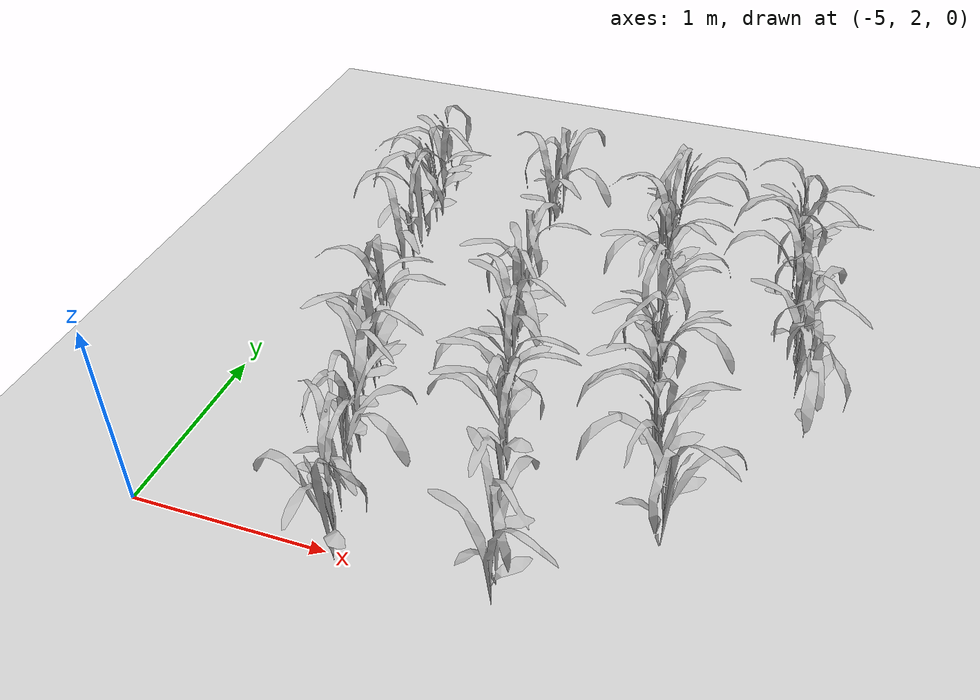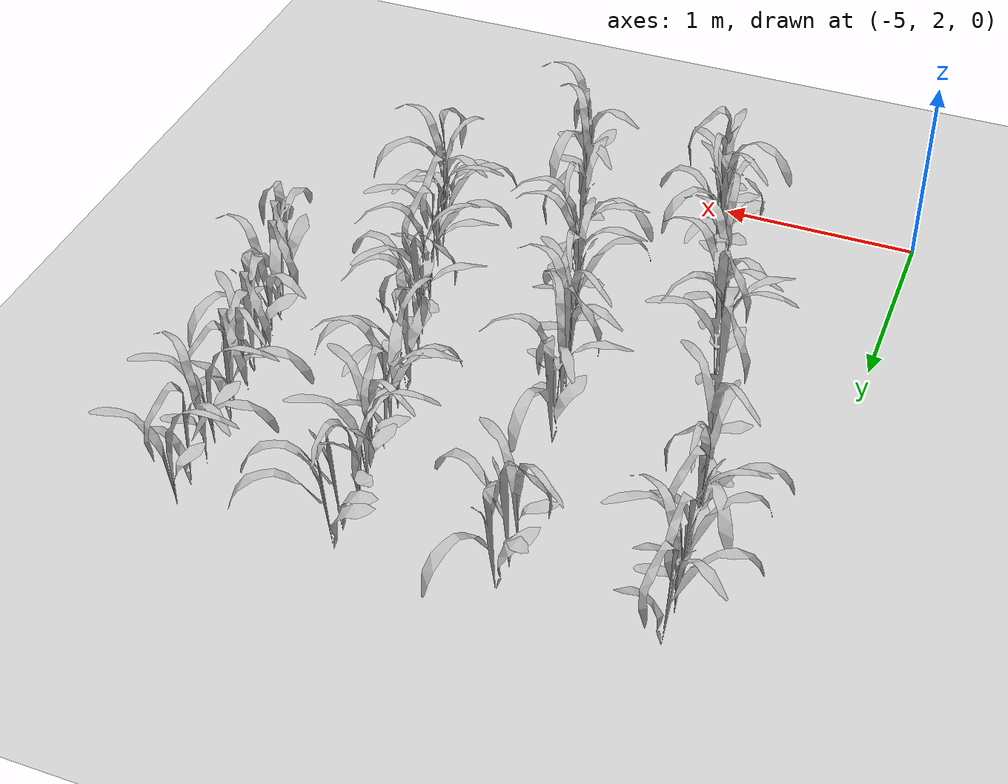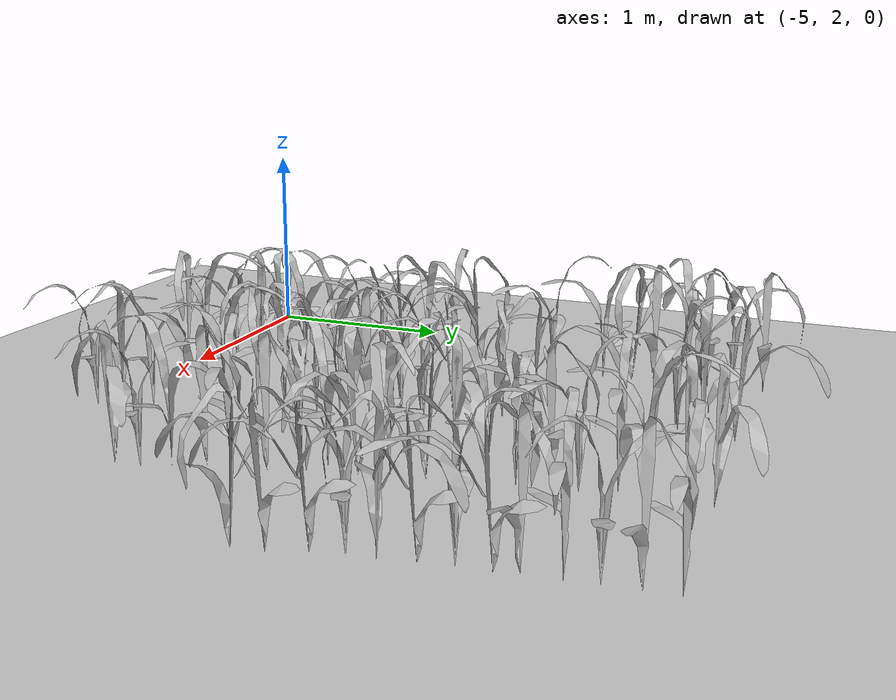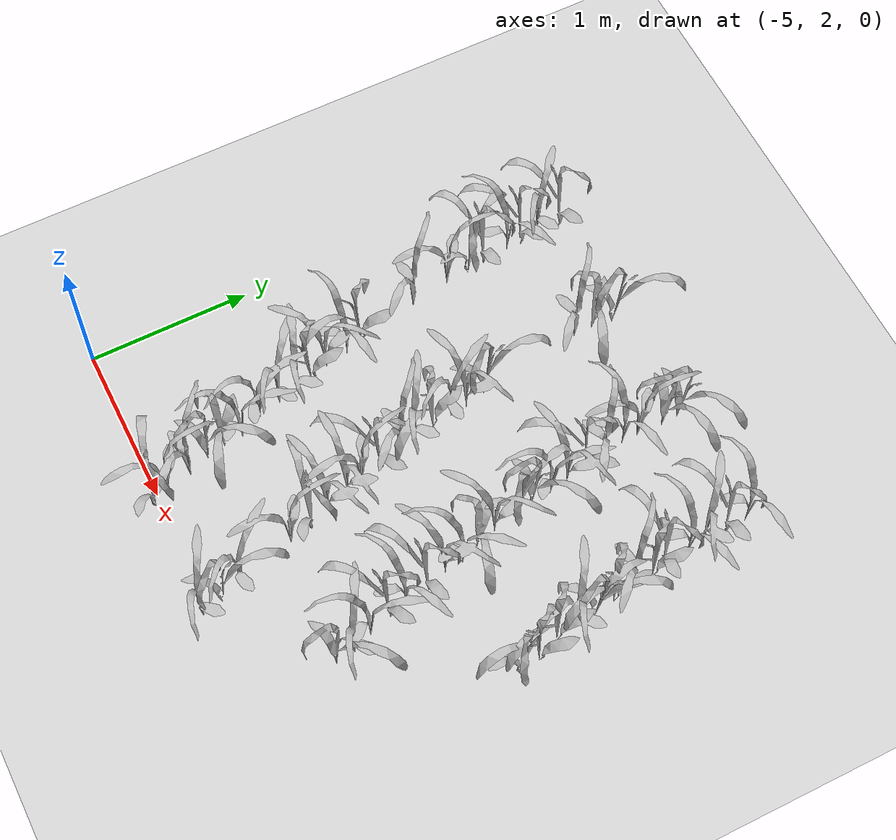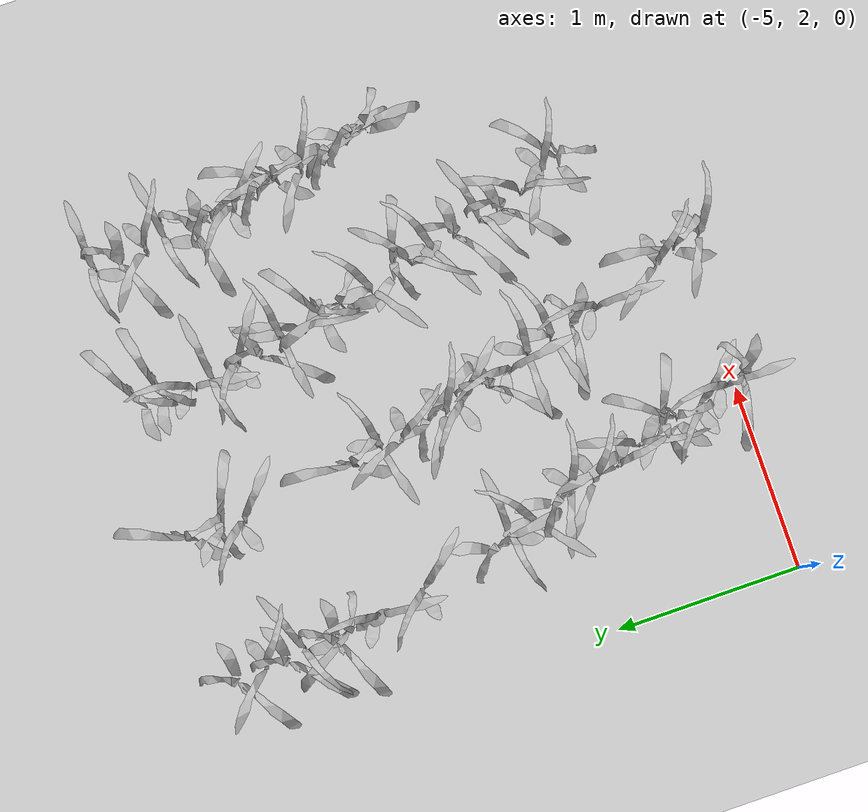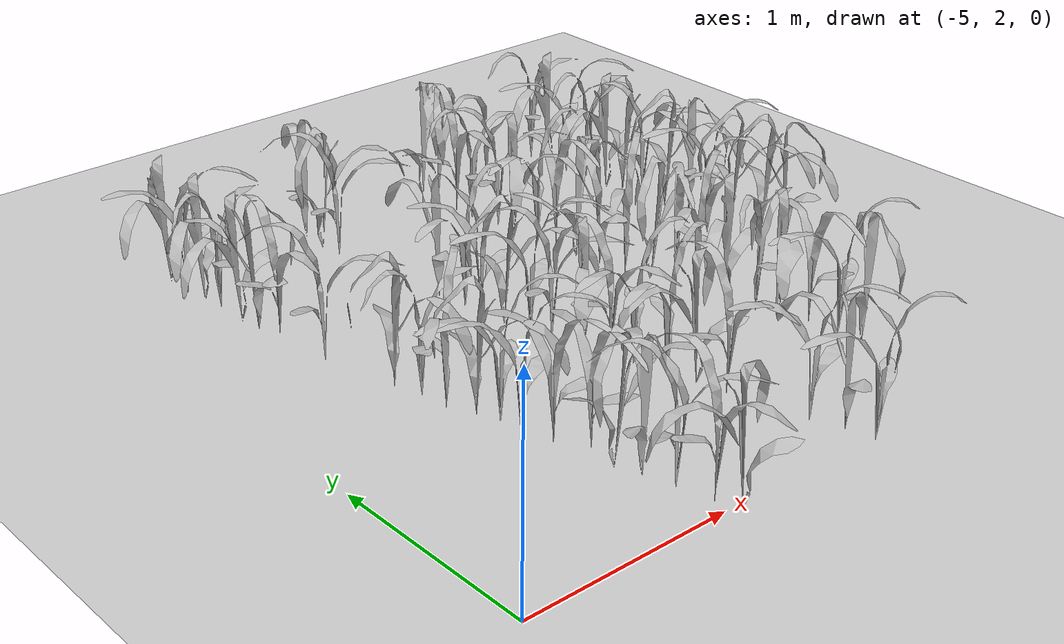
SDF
<sdf version="1.7">
 <world name="default">
  <model name="maize_01_0044">
   <pose>-3.93956 1.9696 -0 -5e-06 2.8e-05 -2.6524</pose>
   <link name="maize_01_link">
    <inertial>
     <pose>0 0 0.01 0 -0 0</pose>
     <mass>0.3</mass>
     <inertia>
      <ixx>0.00334167</ixx>
      <ixy>0</ixy>
      <ixz>0</ixz>
      <iyy>0.00334167</iyy>
      <iyz>0</iyz>
      <izz>1.66667e-05</izz>
     </inertia>
     <pose>0 0 0.1 0 -0 0</pose>
    </inertial>
    <visual name="visual">
     <geometry>
      <mesh><uri>model://maize_01/meshes/maize_01.dae</uri><scale>0.683166 0.683166 0.683166</scale></mesh>
     </geometry>
    </visual>
   </link>
   <static>0</static>
  </model>
  <model name="maize_02_0045">
   <pose>-3.9841 2.06864 -1e-06 -6e-06 -8.6e-05 0.629892</pose>
   <link name="maize_02_link">
    <inertial>
     <pose>0 0 0.01 0 -0 0</pose>
     <mass>0.3</mass>
     <inertia>
      <ixx>0.00334167</ixx>
      <ixy>0</ixy>
      <ixz>0</ixz>
      <iyy>0.00334167</iyy>
      <iyz>0</iyz>
      <izz>1.66667e-05</izz>
     </inertia>
     <pose>0 0 0.1 0 -0 0</pose>
    </inertial>
    <visual name="visual">
     <geometry>
      <mesh><uri>model://maize_02/meshes/maize_02.dae</uri><scale>0.683166 0.683166 0.683166</scale></mesh>
     </geometry>
    </visual>
   </link>
   <static>0</static>
  </model>
  <model name="maize_02_0046">
   <pose>-4.032 2.22437 1e-06 0.000156 3e-06 1.39377</pose>
   <link name="maize_02_link">
    <inertial>
     <pose>0 0 0.01 0 -0 0</pose>
     <mass>0.3</mass>
     <inertia>
      <ixx>0.00334167</ixx>
      <ixy>0</ixy>
      <ixz>0</ixz>
      <iyy>0.00334167</iyy>
      <iyz>0</iyz>
      <izz>1.66667e-05</izz>
     </inertia>
     <pose>0 0 0.1 0 -0 0</pose>
    </inertial>
    <visual name="visual">
     <geometry>
      <mesh><uri>model://maize_02/meshes/maize_02.dae</uri><scale>0.683166 0.683166 0.683166</scale></mesh>
     </geometry>
    </visual>
   </link>
   <static>0</static>
  </model>
  <model name="maize_01_0047">
   <pose>-4.07566 2.35813 -1e-06 -8.6e-05 -6e-06 1.76775</pose>
   <link name="maize_01_link">
    <inertial>
     <pose>0 0 0.01 0 -0 0</pose>
     <mass>0.3</mass>
     <inertia>
      <ixx>0.00334167</ixx>
      <ixy>0</ixy>
      <ixz>0</ixz>
      <iyy>0.00334167</iyy>
      <iyz>0</iyz>
      <izz>1.66667e-05</izz>
     </inertia>
     <pose>0 0 0.1 0 -0 0</pose>
    </inertial>
    <visual name="visual">
     <geometry>
      <mesh><uri>model://maize_01/meshes/maize_01.dae</uri><scale>0.683166 0.683166 0.683166</scale></mesh>
     </geometry>
    </visual>
   </link>
   <static>0</static>
  </model>
  <model name="maize_01_0048">
   <pose>-4.11248 2.47616 -0 -5e-06 -2.8e-05 0.41705</pose>
   <link name="maize_01_link">
    <inertial>
     <pose>0 0 0.01 0 -0 0</pose>
     <mass>0.3</mass>
     <inertia>
      <ixx>0.00334167</ixx>
      <ixy>0</ixy>
      <ixz>0</ixz>
      <iyy>0.00334167</iyy>
      <iyz>0</iyz>
      <izz>1.66667e-05</izz>
     </inertia>
     <pose>0 0 0.1 0 -0 0</pose>
    </inertial>
    <visual name="visual">
     <geometry>
      <mesh><uri>model://maize_01/meshes/maize_01.dae</uri><scale>0.683166 0.683166 0.683166</scale></mesh>
     </geometry>
    </visual>
   </link>
   <static>0</static>
  </model>
  <model name="maize_02_0049">
   <pose>-4.11988 2.59848 1e-06 0.000156 -3e-06 -2.78928</pose>
   <link name="maize_02_link">
    <inertial>
     <pose>0 0 0.01 0 -0 0</pose>
     <mass>0.3</mass>
     <inertia>
      <ixx>0.00334167</ixx>
      <ixy>0</ixy>
      <ixz>0</ixz>
      <iyy>0.00334167</iyy>
      <iyz>0</iyz>
      <izz>1.66667e-05</izz>
     </inertia>
     <pose>0 0 0.1 0 -0 0</pose>
    </inertial>
    <visual name="visual">
     <geometry>
      <mesh><uri>model://maize_02/meshes/maize_02.dae</uri><scale>0.683166 0.683166 0.683166</scale></mesh>
     </geometry>
    </visual>
   </link>
   <static>0</static>
  </model>
  <model name="maize_02_0050">
   <pose>-4.18842 2.74315 -0 -5e-06 -2.8e-05 -2.40135</pose>
   <link name="maize_02_link">
    <inertial>
     <pose>0 0 0.01 0 -0 0</pose>
     <mass>0.3</mass>
     <inertia>
      <ixx>0.00334167</ixx>
      <ixy>0</ixy>
      <ixz>0</ixz>
      <iyy>0.00334167</iyy>
      <iyz>0</iyz>
      <izz>1.66667e-05</izz>
     </inertia>
     <pose>0 0 0.1 0 -0 0</pose>
    </inertial>
    <visual name="visual">
     <geometry>
      <mesh><uri>model://maize_02/meshes/maize_02.dae</uri><scale>0.683166 0.683166 0.683166</scale></mesh>
     </geometry>
    </visual>
   </link>
   <static>0</static>
  </model>
  <model name="maize_02_0051">
   <pose>-4.23114 2.88787 -1e-06 -8.3e-05 6e-06 -1.63363</pose>
   <link name="maize_02_link">
    <inertial>
     <pose>0 0 0.01 0 -0 0</pose>
     <mass>0.3</mass>
     <inertia>
      <ixx>0.00334167</ixx>
      <ixy>0</ixy>
      <ixz>0</ixz>
      <iyy>0.00334167</iyy>
      <iyz>0</iyz>
      <izz>1.66667e-05</izz>
     </inertia>
     <pose>0 0 0.1 0 -0 0</pose>
    </inertial>
    <visual name="visual">
     <geometry>
      <mesh><uri>model://maize_02/meshes/maize_02.dae</uri><scale>0.683166 0.683166 0.683166</scale></mesh>
     </geometry>
    </visual>
   </link>
   <static>0</static>
  </model>
  <model name="maize_02_0052">
   <pose>-4.23301 3.01179 -0 2.8e-05 5e-06 -1.29424</pose>
   <link name="maize_02_link">
    <inertial>
     <pose>0 0 0.01 0 -0 0</pose>
     <mass>0.3</mass>
     <inertia>
      <ixx>0.00334167</ixx>
      <ixy>0</ixy>
      <ixz>0</ixz>
      <iyy>0.00334167</iyy>
      <iyz>0</iyz>
      <izz>1.66667e-05</izz>
     </inertia>
     <pose>0 0 0.1 0 -0 0</pose>
    </inertial>
    <visual name="visual">
     <geometry>
      <mesh><uri>model://maize_02/meshes/maize_02.dae</uri><scale>0.683166 0.683166 0.683166</scale></mesh>
     </geometry>
    </visual>
   </link>
   <static>0</static>
  </model>
  <model name="maize_01_0053">
   <pose>-4.26939 3.11892 -0 -5e-06 2.8e-05 -0.46424</pose>
   <link name="maize_01_link">
    <inertial>
     <pose>0 0 0.01 0 -0 0</pose>
     <mass>0.3</mass>
     <inertia>
      <ixx>0.00334167</ixx>
      <ixy>0</ixy>
      <ixz>0</ixz>
      <iyy>0.00334167</iyy>
      <iyz>0</iyz>
      <izz>1.66667e-05</izz>
     </inertia>
     <pose>0 0 0.1 0 -0 0</pose>
    </inertial>
    <visual name="visual">
     <geometry>
      <mesh><uri>model://maize_01/meshes/maize_01.dae</uri><scale>0.683166 0.683166 0.683166</scale></mesh>
     </geometry>
    </visual>
   </link>
   <static>0</static>
  </model>
  <model name="maize_02_0054">
   <pose>-4.32742 3.24059 -0.000245 -1.4e-05 -1.2e-05 -0.260914</pose>
   <link name="maize_02_link">
    <inertial>
     <pose>0 0 0.01 0 -0 0</pose>
     <mass>0.3</mass>
     <inertia>
      <ixx>0.00334167</ixx>
      <ixy>0</ixy>
      <ixz>0</ixz>
      <iyy>0.00334167</iyy>
      <iyz>0</iyz>
      <izz>1.66667e-05</izz>
     </inertia>
     <pose>0 0 0.1 0 -0 0</pose>
    </inertial>
    <visual name="visual">
     <geometry>
      <mesh><uri>model://maize_02/meshes/maize_02.dae</uri><scale>0.683166 0.683166 0.683166</scale></mesh>
     </geometry>
    </visual>
   </link>
   <static>0</static>
  </model>
  <model name="maize_02_0055">
   <pose>-4.34067 3.38274 -0 -5e-06 -2.8e-05 2.29495</pose>
   <link name="maize_02_link">
    <inertial>
     <pose>0 0 0.01 0 -0 0</pose>
     <mass>0.3</mass>
     <inertia>
      <ixx>0.00334167</ixx>
      <ixy>0</ixy>
      <ixz>0</ixz>
      <iyy>0.00334167</iyy>
      <iyz>0</iyz>
      <izz>1.66667e-05</izz>
     </inertia>
     <pose>0 0 0.1 0 -0 0</pose>
    </inertial>
    <visual name="visual">
     <geometry>
      <mesh><uri>model://maize_02/meshes/maize_02.dae</uri><scale>0.683166 0.683166 0.683166</scale></mesh>
     </geometry>
    </visual>
   </link>
   <static>0</static>
  </model>
  <model name="maize_01_0056">
   <pose>-4.3924 3.50386 1e-06 0.000156 -3e-06 -0.615377</pose>
   <link name="maize_01_link">
    <inertial>
     <pose>0 0 0.01 0 -0 0</pose>
     <mass>0.3</mass>
     <inertia>
      <ixx>0.00334167</ixx>
      <ixy>0</ixy>
      <ixz>0</ixz>
      <iyy>0.00334167</iyy>
      <iyz>0</iyz>
      <izz>1.66667e-05</izz>
     </inertia>
     <pose>0 0 0.1 0 -0 0</pose>
    </inertial>
    <visual name="visual">
     <geometry>
      <mesh><uri>model://maize_01/meshes/maize_01.dae</uri><scale>0.683166 0.683166 0.683166</scale></mesh>
     </geometry>
    </visual>
   </link>
   <static>0</static>
  </model>
  <model name="maize_02_0057">
   <pose>-4.46833 3.89039 -0 -6e-06 -4.8e-05 1.35351</pose>
   <link name="maize_02_link">
    <inertial>
     <pose>0 0 0.01 0 -0 0</pose>
     <mass>0.3</mass>
     <inertia>
      <ixx>0.00334167</ixx>
      <ixy>0</ixy>
      <ixz>0</ixz>
      <iyy>0.00334167</iyy>
      <iyz>0</iyz>
      <izz>1.66667e-05</izz>
     </inertia>
     <pose>0 0 0.1 0 -0 0</pose>
    </inertial>
    <visual name="visual">
     <geometry>
      <mesh><uri>model://maize_02/meshes/maize_02.dae</uri><scale>0.683166 0.683166 0.683166</scale></mesh>
     </geometry>
    </visual>
   </link>
   <static>0</static>
  </model>
  <model name="maize_02_0058">
   <pose>-4.52459 4.14872 -1e-06 -7.9e-05 -6e-06 0.559828</pose>
   <link name="maize_02_link">
    <inertial>
     <pose>0 0 0.01 0 -0 0</pose>
     <mass>0.3</mass>
     <inertia>
      <ixx>0.00334167</ixx>
      <ixy>0</ixy>
      <ixz>0</ixz>
      <iyy>0.00334167</iyy>
      <iyz>0</iyz>
      <izz>1.66667e-05</izz>
     </inertia>
     <pose>0 0 0.1 0 -0 0</pose>
    </inertial>
    <visual name="visual">
     <geometry>
      <mesh><uri>model://maize_02/meshes/maize_02.dae</uri><scale>0.683166 0.683166 0.683166</scale></mesh>
     </geometry>
    </visual>
   </link>
   <static>0</static>
  </model>
  <model name="maize_01_0059">
   <pose>-4.53421 4.30195 -0 -2.8e-05 -5e-06 2.91604</pose>
   <link name="maize_01_link">
    <inertial>
     <pose>0 0 0.01 0 -0 0</pose>
     <mass>0.3</mass>
     <inertia>
      <ixx>0.00334167</ixx>
      <ixy>0</ixy>
      <ixz>0</ixz>
      <iyy>0.00334167</iyy>
      <iyz>0</iyz>
      <izz>1.66667e-05</izz>
     </inertia>
     <pose>0 0 0.1 0 -0 0</pose>
    </inertial>
    <visual name="visual">
     <geometry>
      <mesh><uri>model://maize_01/meshes/maize_01.dae</uri><scale>0.683166 0.683166 0.683166</scale></mesh>
     </geometry>
    </visual>
   </link>
   <static>0</static>
  </model>
  <model name="maize_01_0060">
   <pose>-4.55051 4.41382 -0 5e-06 -2.8e-05 -1.92431</pose>
   <link name="maize_01_link">
    <inertial>
     <pose>0 0 0.01 0 -0 0</pose>
     <mass>0.3</mass>
     <inertia>
      <ixx>0.00334167</ixx>
      <ixy>0</ixy>
      <ixz>0</ixz>
      <iyy>0.00334167</iyy>
      <iyz>0</iyz>
      <izz>1.66667e-05</izz>
     </inertia>
     <pose>0 0 0.1 0 -0 0</pose>
    </inertial>
    <visual name="visual">
     <geometry>
      <mesh><uri>model://maize_01/meshes/maize_01.dae</uri><scale>0.683166 0.683166 0.683166</scale></mesh>
     </geometry>
    </visual>
   </link>
   <static>0</static>
  </model>
  <model name="maize_02_0061">
   <pose>-4.55444 4.57599 1e-06 0.000156 3e-06 2.58788</pose>
   <link name="maize_02_link">
    <inertial>
     <pose>0 0 0.01 0 -0 0</pose>
     <mass>0.3</mass>
     <inertia>
      <ixx>0.00334167</ixx>
      <ixy>0</ixy>
      <ixz>0</ixz>
      <iyy>0.00334167</iyy>
      <iyz>0</iyz>
      <izz>1.66667e-05</izz>
     </inertia>
     <pose>0 0 0.1 0 -0 0</pose>
    </inertial>
    <visual name="visual">
     <geometry>
      <mesh><uri>model://maize_02/meshes/maize_02.dae</uri><scale>0.683166 0.683166 0.683166</scale></mesh>
     </geometry>
    </visual>
   </link>
   <static>0</static>
  </model>
  <model name="maize_01_0062">
   <pose>-4.5745 4.68495 -0 5e-06 -2.8e-05 -1.58331</pose>
   <link name="maize_01_link">
    <inertial>
     <pose>0 0 0.01 0 -0 0</pose>
     <mass>0.3</mass>
     <inertia>
      <ixx>0.00334167</ixx>
      <ixy>0</ixy>
      <ixz>0</ixz>
      <iyy>0.00334167</iyy>
      <iyz>0</iyz>
      <izz>1.66667e-05</izz>
     </inertia>
     <pose>0 0 0.1 0 -0 0</pose>
    </inertial>
    <visual name="visual">
     <geometry>
      <mesh><uri>model://maize_01/meshes/maize_01.dae</uri><scale>0.683166 0.683166 0.683166</scale></mesh>
     </geometry>
    </visual>
   </link>
   <static>0</static>
  </model>
  <model name="maize_02_0063">
   <pose>-4.58951 4.8046 -0 5e-06 -2.8e-05 -1.67682</pose>
   <link name="maize_02_link">
    <inertial>
     <pose>0 0 0.01 0 -0 0</pose>
     <mass>0.3</mass>
     <inertia>
      <ixx>0.00334167</ixx>
      <ixy>0</ixy>
      <ixz>0</ixz>
      <iyy>0.00334167</iyy>
      <iyz>0</iyz>
      <izz>1.66667e-05</izz>
     </inertia>
     <pose>0 0 0.1 0 -0 0</pose>
    </inertial>
    <visual name="visual">
     <geometry>
      <mesh><uri>model://maize_02/meshes/maize_02.dae</uri><scale>0.683166 0.683166 0.683166</scale></mesh>
     </geometry>
    </visual>
   </link>
   <static>0</static>
  </model>
  <model name="maize_01_0064">
   <pose>-4.58613 4.96197 -0 2.8e-05 5e-06 -1.7606</pose>
   <link name="maize_01_link">
    <inertial>
     <pose>0 0 0.01 0 -0 0</pose>
     <mass>0.3</mass>
     <inertia>
      <ixx>0.00334167</ixx>
      <ixy>0</ixy>
      <ixz>0</ixz>
      <iyy>0.00334167</iyy>
      <iyz>0</iyz>
      <izz>1.66667e-05</izz>
     </inertia>
     <pose>0 0 0.1 0 -0 0</pose>
    </inertial>
    <visual name="visual">
     <geometry>
      <mesh><uri>model://maize_01/meshes/maize_01.dae</uri><scale>0.683166 0.683166 0.683166</scale></mesh>
     </geometry>
    </visual>
   </link>
   <static>0</static>
  </model>
  <model name="maize_02_0103">
   <pose>-3.19366 1.94614 -0 2.8e-05 -5e-06 -1.38904</pose>
   <link name="maize_02_link">
    <inertial>
     <pose>0 0 0.01 0 -0 0</pose>
     <mass>0.3</mass>
     <inertia>
      <ixx>0.00334167</ixx>
      <ixy>0</ixy>
      <ixz>0</ixz>
      <iyy>0.00334167</iyy>
      <iyz>0</iyz>
      <izz>1.66667e-05</izz>
     </inertia>
     <pose>0 0 0.1 0 -0 0</pose>
    </inertial>
    <visual name="visual">
     <geometry>
      <mesh><uri>model://maize_02/meshes/maize_02.dae</uri><scale>0.683166 0.683166 0.683166</scale></mesh>
     </geometry>
    </visual>
   </link>
   <static>0</static>
  </model>
  <model name="maize_01_0104">
   <pose>-3.22049 2.0755 -0.000245 -1.2e-05 1.4e-05 2.25526</pose>
   <link name="maize_01_link">
    <inertial>
     <pose>0 0 0.01 0 -0 0</pose>
     <mass>0.3</mass>
     <inertia>
      <ixx>0.00334167</ixx>
      <ixy>0</ixy>
      <ixz>0</ixz>
      <iyy>0.00334167</iyy>
      <iyz>0</iyz>
      <izz>1.66667e-05</izz>
     </inertia>
     <pose>0 0 0.1 0 -0 0</pose>
    </inertial>
    <visual name="visual">
     <geometry>
      <mesh><uri>model://maize_01/meshes/maize_01.dae</uri><scale>0.683166 0.683166 0.683166</scale></mesh>
     </geometry>
    </visual>
   </link>
   <static>0</static>
  </model>
  <model name="maize_02_0105">
   <pose>-3.27385 2.21698 -0 -6e-06 4.8e-05 -1.84694</pose>
   <link name="maize_02_link">
    <inertial>
     <pose>0 0 0.01 0 -0 0</pose>
     <mass>0.3</mass>
     <inertia>
      <ixx>0.00334167</ixx>
      <ixy>0</ixy>
      <ixz>0</ixz>
      <iyy>0.00334167</iyy>
      <iyz>0</iyz>
      <izz>1.66667e-05</izz>
     </inertia>
     <pose>0 0 0.1 0 -0 0</pose>
    </inertial>
    <visual name="visual">
     <geometry>
      <mesh><uri>model://maize_02/meshes/maize_02.dae</uri><scale>0.683166 0.683166 0.683166</scale></mesh>
     </geometry>
    </visual>
   </link>
   <static>0</static>
  </model>
  <model name="maize_02_0106">
   <pose>-3.37915 2.57296 -0 -5e-06 -2.8e-05 0.613587</pose>
   <link name="maize_02_link">
    <inertial>
     <pose>0 0 0.01 0 -0 0</pose>
     <mass>0.3</mass>
     <inertia>
      <ixx>0.00334167</ixx>
      <ixy>0</ixy>
      <ixz>0</ixz>
      <iyy>0.00334167</iyy>
      <iyz>0</iyz>
      <izz>1.66667e-05</izz>
     </inertia>
     <pose>0 0 0.1 0 -0 0</pose>
    </inertial>
    <visual name="visual">
     <geometry>
      <mesh><uri>model://maize_02/meshes/maize_02.dae</uri><scale>0.683166 0.683166 0.683166</scale></mesh>
     </geometry>
    </visual>
   </link>
   <static>0</static>
  </model>
  <model name="maize_01_0107">
   <pose>-3.40671 2.71972 -0 -5e-06 -2.8e-05 -2.52351</pose>
   <link name="maize_01_link">
    <inertial>
     <pose>0 0 0.01 0 -0 0</pose>
     <mass>0.3</mass>
     <inertia>
      <ixx>0.00334167</ixx>
      <ixy>0</ixy>
      <ixz>0</ixz>
      <iyy>0.00334167</iyy>
      <iyz>0</iyz>
      <izz>1.66667e-05</izz>
     </inertia>
     <pose>0 0 0.1 0 -0 0</pose>
    </inertial>
    <visual name="visual">
     <geometry>
      <mesh><uri>model://maize_01/meshes/maize_01.dae</uri><scale>0.683166 0.683166 0.683166</scale></mesh>
     </geometry>
    </visual>
   </link>
   <static>0</static>
  </model>
  <model name="maize_02_0108">
   <pose>-3.45413 2.84813 -1e-06 -6e-06 8.9e-05 -0.724634</pose>
   <link name="maize_02_link">
    <inertial>
     <pose>0 0 0.01 0 -0 0</pose>
     <mass>0.3</mass>
     <inertia>
      <ixx>0.00334167</ixx>
      <ixy>0</ixy>
      <ixz>0</ixz>
      <iyy>0.00334167</iyy>
      <iyz>0</iyz>
      <izz>1.66667e-05</izz>
     </inertia>
     <pose>0 0 0.1 0 -0 0</pose>
    </inertial>
    <visual name="visual">
     <geometry>
      <mesh><uri>model://maize_02/meshes/maize_02.dae</uri><scale>0.683166 0.683166 0.683166</scale></mesh>
     </geometry>
    </visual>
   </link>
   <static>0</static>
  </model>
  <model name="maize_02_0109">
   <pose>-3.50124 2.9957 -0 -5e-06 2.8e-05 -0.940592</pose>
   <link name="maize_02_link">
    <inertial>
     <pose>0 0 0.01 0 -0 0</pose>
     <mass>0.3</mass>
     <inertia>
      <ixx>0.00334167</ixx>
      <ixy>0</ixy>
      <ixz>0</ixz>
      <iyy>0.00334167</iyy>
      <iyz>0</iyz>
      <izz>1.66667e-05</izz>
     </inertia>
     <pose>0 0 0.1 0 -0 0</pose>
    </inertial>
    <visual name="visual">
     <geometry>
      <mesh><uri>model://maize_02/meshes/maize_02.dae</uri><scale>0.683166 0.683166 0.683166</scale></mesh>
     </geometry>
    </visual>
   </link>
   <static>0</static>
  </model>
  <model name="maize_02_0110">
   <pose>-3.54151 3.09762 1e-06 -0.000156 3e-06 0.754845</pose>
   <link name="maize_02_link">
    <inertial>
     <pose>0 0 0.01 0 -0 0</pose>
     <mass>0.3</mass>
     <inertia>
      <ixx>0.00334167</ixx>
      <ixy>0</ixy>
      <ixz>0</ixz>
      <iyy>0.00334167</iyy>
      <iyz>0</iyz>
      <izz>1.66667e-05</izz>
     </inertia>
     <pose>0 0 0.1 0 -0 0</pose>
    </inertial>
    <visual name="visual">
     <geometry>
      <mesh><uri>model://maize_02/meshes/maize_02.dae</uri><scale>0.683166 0.683166 0.683166</scale></mesh>
     </geometry>
    </visual>
   </link>
   <static>0</static>
  </model>
  <model name="maize_01_0111">
   <pose>-3.57436 3.24035 -0 2.8e-05 -5e-06 -1.54894</pose>
   <link name="maize_01_link">
    <inertial>
     <pose>0 0 0.01 0 -0 0</pose>
     <mass>0.3</mass>
     <inertia>
      <ixx>0.00334167</ixx>
      <ixy>0</ixy>
      <ixz>0</ixz>
      <iyy>0.00334167</iyy>
      <iyz>0</iyz>
      <izz>1.66667e-05</izz>
     </inertia>
     <pose>0 0 0.1 0 -0 0</pose>
    </inertial>
    <visual name="visual">
     <geometry>
      <mesh><uri>model://maize_01/meshes/maize_01.dae</uri><scale>0.683166 0.683166 0.683166</scale></mesh>
     </geometry>
    </visual>
   </link>
   <static>0</static>
  </model>
  <model name="maize_02_0112">
   <pose>-3.6167 3.38806 -0 5e-06 2.8e-05 1.40205</pose>
   <link name="maize_02_link">
    <inertial>
     <pose>0 0 0.01 0 -0 0</pose>
     <mass>0.3</mass>
     <inertia>
      <ixx>0.00334167</ixx>
      <ixy>0</ixy>
      <ixz>0</ixz>
      <iyy>0.00334167</iyy>
      <iyz>0</iyz>
      <izz>1.66667e-05</izz>
     </inertia>
     <pose>0 0 0.1 0 -0 0</pose>
    </inertial>
    <visual name="visual">
     <geometry>
      <mesh><uri>model://maize_02/meshes/maize_02.dae</uri><scale>0.683166 0.683166 0.683166</scale></mesh>
     </geometry>
    </visual>
   </link>
   <static>0</static>
  </model>
  <model name="maize_02_0113">
   <pose>-3.6465 3.49514 -0 -6e-06 4.8e-05 -1.45268</pose>
   <link name="maize_02_link">
    <inertial>
     <pose>0 0 0.01 0 -0 0</pose>
     <mass>0.3</mass>
     <inertia>
      <ixx>0.00334167</ixx>
      <ixy>0</ixy>
      <ixz>0</ixz>
      <iyy>0.00334167</iyy>
      <iyz>0</iyz>
      <izz>1.66667e-05</izz>
     </inertia>
     <pose>0 0 0.1 0 -0 0</pose>
    </inertial>
    <visual name="visual">
     <geometry>
      <mesh><uri>model://maize_02/meshes/maize_02.dae</uri><scale>0.683166 0.683166 0.683166</scale></mesh>
     </geometry>
    </visual>
   </link>
   <static>0</static>
  </model>
  <model name="maize_01_0114">
   <pose>-3.68044 3.6315 -1e-06 -8.9e-05 -6e-06 -0.196647</pose>
   <link name="maize_01_link">
    <inertial>
     <pose>0 0 0.01 0 -0 0</pose>
     <mass>0.3</mass>
     <inertia>
      <ixx>0.00334167</ixx>
      <ixy>0</ixy>
      <ixz>0</ixz>
      <iyy>0.00334167</iyy>
      <iyz>0</iyz>
      <izz>1.66667e-05</izz>
     </inertia>
     <pose>0 0 0.1 0 -0 0</pose>
    </inertial>
    <visual name="visual">
     <geometry>
      <mesh><uri>model://maize_01/meshes/maize_01.dae</uri><scale>0.683166 0.683166 0.683166</scale></mesh>
     </geometry>
    </visual>
   </link>
   <static>0</static>
  </model>
  <model name="maize_02_0115">
   <pose>-3.70262 3.7636 -0.000245 -1.4e-05 -1.2e-05 -2.03925</pose>
   <link name="maize_02_link">
    <inertial>
     <pose>0 0 0.01 0 -0 0</pose>
     <mass>0.3</mass>
     <inertia>
      <ixx>0.00334167</ixx>
      <ixy>0</ixy>
      <ixz>0</ixz>
      <iyy>0.00334167</iyy>
      <iyz>0</iyz>
      <izz>1.66667e-05</izz>
     </inertia>
     <pose>0 0 0.1 0 -0 0</pose>
    </inertial>
    <visual name="visual">
     <geometry>
      <mesh><uri>model://maize_02/meshes/maize_02.dae</uri><scale>0.683166 0.683166 0.683166</scale></mesh>
     </geometry>
    </visual>
   </link>
   <static>0</static>
  </model>
  <model name="maize_02_0116">
   <pose>-3.71103 3.86856 1e-06 -3e-06 -0.000156 -0.698277</pose>
   <link name="maize_02_link">
    <inertial>
     <pose>0 0 0.01 0 -0 0</pose>
     <mass>0.3</mass>
     <inertia>
      <ixx>0.00334167</ixx>
      <ixy>0</ixy>
      <ixz>0</ixz>
      <iyy>0.00334167</iyy>
      <iyz>0</iyz>
      <izz>1.66667e-05</izz>
     </inertia>
     <pose>0 0 0.1 0 -0 0</pose>
    </inertial>
    <visual name="visual">
     <geometry>
      <mesh><uri>model://maize_02/meshes/maize_02.dae</uri><scale>0.683166 0.683166 0.683166</scale></mesh>
     </geometry>
    </visual>
   </link>
   <static>0</static>
  </model>
  <model name="maize_01_0117">
   <pose>-3.74616 4.00537 -0 -6e-06 -4.8e-05 2.27841</pose>
   <link name="maize_01_link">
    <inertial>
     <pose>0 0 0.01 0 -0 0</pose>
     <mass>0.3</mass>
     <inertia>
      <ixx>0.00334167</ixx>
      <ixy>0</ixy>
      <ixz>0</ixz>
      <iyy>0.00334167</iyy>
      <iyz>0</iyz>
      <izz>1.66667e-05</izz>
     </inertia>
     <pose>0 0 0.1 0 -0 0</pose>
    </inertial>
    <visual name="visual">
     <geometry>
      <mesh><uri>model://maize_01/meshes/maize_01.dae</uri><scale>0.683166 0.683166 0.683166</scale></mesh>
     </geometry>
    </visual>
   </link>
   <static>0</static>
  </model>
  <model name="maize_02_0118">
   <pose>-3.83664 4.6619 -0 -5e-06 -2.8e-05 1.45399</pose>
   <link name="maize_02_link">
    <inertial>
     <pose>0 0 0.01 0 -0 0</pose>
     <mass>0.3</mass>
     <inertia>
      <ixx>0.00334167</ixx>
      <ixy>0</ixy>
      <ixz>0</ixz>
      <iyy>0.00334167</iyy>
      <iyz>0</iyz>
      <izz>1.66667e-05</izz>
     </inertia>
     <pose>0 0 0.1 0 -0 0</pose>
    </inertial>
    <visual name="visual">
     <geometry>
      <mesh><uri>model://maize_02/meshes/maize_02.dae</uri><scale>0.683166 0.683166 0.683166</scale></mesh>
     </geometry>
    </visual>
   </link>
   <static>0</static>
  </model>
  <model name="maize_01_0119">
   <pose>-3.84534 4.78544 -0 -2.8e-05 -5e-06 0.408962</pose>
   <link name="maize_01_link">
    <inertial>
     <pose>0 0 0.01 0 -0 0</pose>
     <mass>0.3</mass>
     <inertia>
      <ixx>0.00334167</ixx>
      <ixy>0</ixy>
      <ixz>0</ixz>
      <iyy>0.00334167</iyy>
      <iyz>0</iyz>
      <izz>1.66667e-05</izz>
     </inertia>
     <pose>0 0 0.1 0 -0 0</pose>
    </inertial>
    <visual name="visual">
     <geometry>
      <mesh><uri>model://maize_01/meshes/maize_01.dae</uri><scale>0.683166 0.683166 0.683166</scale></mesh>
     </geometry>
    </visual>
   </link>
   <static>0</static>
  </model>
  <model name="maize_01_0120">
   <pose>-3.83707 4.9276 -1e-06 6e-06 -8.6e-05 1.98019</pose>
   <link name="maize_01_link">
    <inertial>
     <pose>0 0 0.01 0 -0 0</pose>
     <mass>0.3</mass>
     <inertia>
      <ixx>0.00334167</ixx>
      <ixy>0</ixy>
      <ixz>0</ixz>
      <iyy>0.00334167</iyy>
      <iyz>0</iyz>
      <izz>1.66667e-05</izz>
     </inertia>
     <pose>0 0 0.1 0 -0 0</pose>
    </inertial>
    <visual name="visual">
     <geometry>
      <mesh><uri>model://maize_01/meshes/maize_01.dae</uri><scale>0.683166 0.683166 0.683166</scale></mesh>
     </geometry>
    </visual>
   </link>
   <static>0</static>
  </model>
  <model name="maize_01_0154">
   <pose>-2.6006 2.49434 -0 5e-06 2.8e-05 1.55058</pose>
   <link name="maize_01_link">
    <inertial>
     <pose>0 0 0.01 0 -0 0</pose>
     <mass>0.3</mass>
     <inertia>
      <ixx>0.00334167</ixx>
      <ixy>0</ixy>
      <ixz>0</ixz>
      <iyy>0.00334167</iyy>
      <iyz>0</iyz>
      <izz>1.66667e-05</izz>
     </inertia>
     <pose>0 0 0.1 0 -0 0</pose>
    </inertial>
    <visual name="visual">
     <geometry>
      <mesh><uri>model://maize_01/meshes/maize_01.dae</uri><scale>0.683166 0.683166 0.683166</scale></mesh>
     </geometry>
    </visual>
   </link>
   <static>0</static>
  </model>
  <model name="maize_02_0155">
   <pose>-2.61883 2.61506 1e-06 3e-06 -0.000156 -1.43455</pose>
   <link name="maize_02_link">
    <inertial>
     <pose>0 0 0.01 0 -0 0</pose>
     <mass>0.3</mass>
     <inertia>
      <ixx>0.00334167</ixx>
      <ixy>0</ixy>
      <ixz>0</ixz>
      <iyy>0.00334167</iyy>
      <iyz>0</iyz>
      <izz>1.66667e-05</izz>
     </inertia>
     <pose>0 0 0.1 0 -0 0</pose>
    </inertial>
    <visual name="visual">
     <geometry>
      <mesh><uri>model://maize_02/meshes/maize_02.dae</uri><scale>0.683166 0.683166 0.683166</scale></mesh>
     </geometry>
    </visual>
   </link>
   <static>0</static>
  </model>
  <model name="maize_02_0156">
   <pose>-2.67107 2.73942 1e-06 -3e-06 0.000156 -2.89269</pose>
   <link name="maize_02_link">
    <inertial>
     <pose>0 0 0.01 0 -0 0</pose>
     <mass>0.3</mass>
     <inertia>
      <ixx>0.00334167</ixx>
      <ixy>0</ixy>
      <ixz>0</ixz>
      <iyy>0.00334167</iyy>
      <iyz>0</iyz>
      <izz>1.66667e-05</izz>
     </inertia>
     <pose>0 0 0.1 0 -0 0</pose>
    </inertial>
    <visual name="visual">
     <geometry>
      <mesh><uri>model://maize_02/meshes/maize_02.dae</uri><scale>0.683166 0.683166 0.683166</scale></mesh>
     </geometry>
    </visual>
   </link>
   <static>0</static>
  </model>
  <model name="maize_01_0157">
   <pose>-2.72199 2.88595 -0 -2.8e-05 5e-06 -1.60913</pose>
   <link name="maize_01_link">
    <inertial>
     <pose>0 0 0.01 0 -0 0</pose>
     <mass>0.3</mass>
     <inertia>
      <ixx>0.00334167</ixx>
      <ixy>0</ixy>
      <ixz>0</ixz>
      <iyy>0.00334167</iyy>
      <iyz>0</iyz>
      <izz>1.66667e-05</izz>
     </inertia>
     <pose>0 0 0.1 0 -0 0</pose>
    </inertial>
    <visual name="visual">
     <geometry>
      <mesh><uri>model://maize_01/meshes/maize_01.dae</uri><scale>0.683166 0.683166 0.683166</scale></mesh>
     </geometry>
    </visual>
   </link>
   <static>0</static>
  </model>
  <model name="maize_02_0158">
   <pose>-2.739 2.99052 -1e-06 -8.9e-05 6e-06 2.54449</pose>
   <link name="maize_02_link">
    <inertial>
     <pose>0 0 0.01 0 -0 0</pose>
     <mass>0.3</mass>
     <inertia>
      <ixx>0.00334167</ixx>
      <ixy>0</ixy>
      <ixz>0</ixz>
      <iyy>0.00334167</iyy>
      <iyz>0</iyz>
      <izz>1.66667e-05</izz>
     </inertia>
     <pose>0 0 0.1 0 -0 0</pose>
    </inertial>
    <visual name="visual">
     <geometry>
      <mesh><uri>model://maize_02/meshes/maize_02.dae</uri><scale>0.683166 0.683166 0.683166</scale></mesh>
     </geometry>
    </visual>
   </link>
   <static>0</static>
  </model>
  <model name="maize_01_0159">
   <pose>-2.77149 3.1503 -0 2.8e-05 5e-06 -1.81311</pose>
   <link name="maize_01_link">
    <inertial>
     <pose>0 0 0.01 0 -0 0</pose>
     <mass>0.3</mass>
     <inertia>
      <ixx>0.00334167</ixx>
      <ixy>0</ixy>
      <ixz>0</ixz>
      <iyy>0.00334167</iyy>
      <iyz>0</iyz>
      <izz>1.66667e-05</izz>
     </inertia>
     <pose>0 0 0.1 0 -0 0</pose>
    </inertial>
    <visual name="visual">
     <geometry>
      <mesh><uri>model://maize_01/meshes/maize_01.dae</uri><scale>0.683166 0.683166 0.683166</scale></mesh>
     </geometry>
    </visual>
   </link>
   <static>0</static>
  </model>
  <model name="maize_02_0160">
   <pose>-2.82173 3.28241 -0 -6e-06 4.8e-05 -0.500704</pose>
   <link name="maize_02_link">
    <inertial>
     <pose>0 0 0.01 0 -0 0</pose>
     <mass>0.3</mass>
     <inertia>
      <ixx>0.00334167</ixx>
      <ixy>0</ixy>
      <ixz>0</ixz>
      <iyy>0.00334167</iyy>
      <iyz>0</iyz>
      <izz>1.66667e-05</izz>
     </inertia>
     <pose>0 0 0.1 0 -0 0</pose>
    </inertial>
    <visual name="visual">
     <geometry>
      <mesh><uri>model://maize_02/meshes/maize_02.dae</uri><scale>0.683166 0.683166 0.683166</scale></mesh>
     </geometry>
    </visual>
   </link>
   <static>0</static>
  </model>
  <model name="maize_02_0161">
   <pose>-2.83432 3.40024 1e-06 3e-06 -0.000156 3.02237</pose>
   <link name="maize_02_link">
    <inertial>
     <pose>0 0 0.01 0 -0 0</pose>
     <mass>0.3</mass>
     <inertia>
      <ixx>0.00334167</ixx>
      <ixy>0</ixy>
      <ixz>0</ixz>
      <iyy>0.00334167</iyy>
      <iyz>0</iyz>
      <izz>1.66667e-05</izz>
     </inertia>
     <pose>0 0 0.1 0 -0 0</pose>
    </inertial>
    <visual name="visual">
     <geometry>
      <mesh><uri>model://maize_02/meshes/maize_02.dae</uri><scale>0.683166 0.683166 0.683166</scale></mesh>
     </geometry>
    </visual>
   </link>
   <static>0</static>
  </model>
  <model name="maize_01_0162">
   <pose>-2.88158 3.51346 -0.000245 -1.4e-05 1.2e-05 0.498348</pose>
   <link name="maize_01_link">
    <inertial>
     <pose>0 0 0.01 0 -0 0</pose>
     <mass>0.3</mass>
     <inertia>
      <ixx>0.00334167</ixx>
      <ixy>0</ixy>
      <ixz>0</ixz>
      <iyy>0.00334167</iyy>
      <iyz>0</iyz>
      <izz>1.66667e-05</izz>
     </inertia>
     <pose>0 0 0.1 0 -0 0</pose>
    </inertial>
    <visual name="visual">
     <geometry>
      <mesh><uri>model://maize_01/meshes/maize_01.dae</uri><scale>0.683166 0.683166 0.683166</scale></mesh>
     </geometry>
    </visual>
   </link>
   <static>0</static>
  </model>
  <model name="maize_02_0163">
   <pose>-2.92067 3.64728 -0 4.8e-05 6e-06 -0.342391</pose>
   <link name="maize_02_link">
    <inertial>
     <pose>0 0 0.01 0 -0 0</pose>
     <mass>0.3</mass>
     <inertia>
      <ixx>0.00334167</ixx>
      <ixy>0</ixy>
      <ixz>0</ixz>
      <iyy>0.00334167</iyy>
      <iyz>0</iyz>
      <izz>1.66667e-05</izz>
     </inertia>
     <pose>0 0 0.1 0 -0 0</pose>
    </inertial>
    <visual name="visual">
     <geometry>
      <mesh><uri>model://maize_02/meshes/maize_02.dae</uri><scale>0.683166 0.683166 0.683166</scale></mesh>
     </geometry>
    </visual>
   </link>
   <static>0</static>
  </model>
  <model name="maize_01_0164">
   <pose>-2.93684 3.8025 -1e-06 -6e-06 8.9e-05 2.65967</pose>
   <link name="maize_01_link">
    <inertial>
     <pose>0 0 0.01 0 -0 0</pose>
     <mass>0.3</mass>
     <inertia>
      <ixx>0.00334167</ixx>
      <ixy>0</ixy>
      <ixz>0</ixz>
      <iyy>0.00334167</iyy>
      <iyz>0</iyz>
      <izz>1.66667e-05</izz>
     </inertia>
     <pose>0 0 0.1 0 -0 0</pose>
    </inertial>
    <visual name="visual">
     <geometry>
      <mesh><uri>model://maize_01/meshes/maize_01.dae</uri><scale>0.683166 0.683166 0.683166</scale></mesh>
     </geometry>
    </visual>
   </link>
   <static>0</static>
  </model>
  <model name="maize_01_0165">
   <pose>-2.97716 3.91831 -1e-06 6e-06 8.3e-05 1.4115</pose>
   <link name="maize_01_link">
    <inertial>
     <pose>0 0 0.01 0 -0 0</pose>
     <mass>0.3</mass>
     <inertia>
      <ixx>0.00334167</ixx>
      <ixy>0</ixy>
      <ixz>0</ixz>
      <iyy>0.00334167</iyy>
      <iyz>0</iyz>
      <izz>1.66667e-05</izz>
     </inertia>
     <pose>0 0 0.1 0 -0 0</pose>
    </inertial>
    <visual name="visual">
     <geometry>
      <mesh><uri>model://maize_01/meshes/maize_01.dae</uri><scale>0.683166 0.683166 0.683166</scale></mesh>
     </geometry>
    </visual>
   </link>
   <static>0</static>
  </model>
  <model name="maize_02_0166">
   <pose>-2.99169 4.05007 -0 -5e-06 -2.8e-05 -2.77609</pose>
   <link name="maize_02_link">
    <inertial>
     <pose>0 0 0.01 0 -0 0</pose>
     <mass>0.3</mass>
     <inertia>
      <ixx>0.00334167</ixx>
      <ixy>0</ixy>
      <ixz>0</ixz>
      <iyy>0.00334167</iyy>
      <iyz>0</iyz>
      <izz>1.66667e-05</izz>
     </inertia>
     <pose>0 0 0.1 0 -0 0</pose>
    </inertial>
    <visual name="visual">
     <geometry>
      <mesh><uri>model://maize_02/meshes/maize_02.dae</uri><scale>0.683166 0.683166 0.683166</scale></mesh>
     </geometry>
    </visual>
   </link>
   <static>0</static>
  </model>
  <model name="maize_02_0167">
   <pose>-3.0101 4.16931 -0 -2.8e-05 -5e-06 -0.799917</pose>
   <link name="maize_02_link">
    <inertial>
     <pose>0 0 0.01 0 -0 0</pose>
     <mass>0.3</mass>
     <inertia>
      <ixx>0.00334167</ixx>
      <ixy>0</ixy>
      <ixz>0</ixz>
      <iyy>0.00334167</iyy>
      <iyz>0</iyz>
      <izz>1.66667e-05</izz>
     </inertia>
     <pose>0 0 0.1 0 -0 0</pose>
    </inertial>
    <visual name="visual">
     <geometry>
      <mesh><uri>model://maize_02/meshes/maize_02.dae</uri><scale>0.683166 0.683166 0.683166</scale></mesh>
     </geometry>
    </visual>
   </link>
   <static>0</static>
  </model>
  <model name="maize_01_0168">
   <pose>-3.04424 4.31259 -0 -2.8e-05 -5e-06 -1.44818</pose>
   <link name="maize_01_link">
    <inertial>
     <pose>0 0 0.01 0 -0 0</pose>
     <mass>0.3</mass>
     <inertia>
      <ixx>0.00334167</ixx>
      <ixy>0</ixy>
      <ixz>0</ixz>
      <iyy>0.00334167</iyy>
      <iyz>0</iyz>
      <izz>1.66667e-05</izz>
     </inertia>
     <pose>0 0 0.1 0 -0 0</pose>
    </inertial>
    <visual name="visual">
     <geometry>
      <mesh><uri>model://maize_01/meshes/maize_01.dae</uri><scale>0.683166 0.683166 0.683166</scale></mesh>
     </geometry>
    </visual>
   </link>
   <static>0</static>
  </model>
  <model name="maize_02_0169">
   <pose>-3.04076 4.42307 -0 2.8e-05 5e-06 1.58437</pose>
   <link name="maize_02_link">
    <inertial>
     <pose>0 0 0.01 0 -0 0</pose>
     <mass>0.3</mass>
     <inertia>
      <ixx>0.00334167</ixx>
      <ixy>0</ixy>
      <ixz>0</ixz>
      <iyy>0.00334167</iyy>
      <iyz>0</iyz>
      <izz>1.66667e-05</izz>
     </inertia>
     <pose>0 0 0.1 0 -0 0</pose>
    </inertial>
    <visual name="visual">
     <geometry>
      <mesh><uri>model://maize_02/meshes/maize_02.dae</uri><scale>0.683166 0.683166 0.683166</scale></mesh>
     </geometry>
    </visual>
   </link>
   <static>0</static>
  </model>
  <model name="maize_02_0170">
   <pose>-3.08292 4.57497 -0 -2.8e-05 -5e-06 2.33349</pose>
   <link name="maize_02_link">
    <inertial>
     <pose>0 0 0.01 0 -0 0</pose>
     <mass>0.3</mass>
     <inertia>
      <ixx>0.00334167</ixx>
      <ixy>0</ixy>
      <ixz>0</ixz>
      <iyy>0.00334167</iyy>
      <iyz>0</iyz>
      <izz>1.66667e-05</izz>
     </inertia>
     <pose>0 0 0.1 0 -0 0</pose>
    </inertial>
    <visual name="visual">
     <geometry>
      <mesh><uri>model://maize_02/meshes/maize_02.dae</uri><scale>0.683166 0.683166 0.683166</scale></mesh>
     </geometry>
    </visual>
   </link>
   <static>0</static>
  </model>
  <model name="maize_02_0171">
   <pose>-3.09469 4.6843 -0.000245 1.2e-05 1.4e-05 0.453725</pose>
   <link name="maize_02_link">
    <inertial>
     <pose>0 0 0.01 0 -0 0</pose>
     <mass>0.3</mass>
     <inertia>
      <ixx>0.00334167</ixx>
      <ixy>0</ixy>
      <ixz>0</ixz>
      <iyy>0.00334167</iyy>
      <iyz>0</iyz>
      <izz>1.66667e-05</izz>
     </inertia>
     <pose>0 0 0.1 0 -0 0</pose>
    </inertial>
    <visual name="visual">
     <geometry>
      <mesh><uri>model://maize_02/meshes/maize_02.dae</uri><scale>0.683166 0.683166 0.683166</scale></mesh>
     </geometry>
    </visual>
   </link>
   <static>0</static>
  </model>
  <model name="maize_01_0172">
   <pose>-3.08496 4.84375 -0 -5e-06 -2.8e-05 1.03741</pose>
   <link name="maize_01_link">
    <inertial>
     <pose>0 0 0.01 0 -0 0</pose>
     <mass>0.3</mass>
     <inertia>
      <ixx>0.00334167</ixx>
      <ixy>0</ixy>
      <ixz>0</ixz>
      <iyy>0.00334167</iyy>
      <iyz>0</iyz>
      <izz>1.66667e-05</izz>
     </inertia>
     <pose>0 0 0.1 0 -0 0</pose>
    </inertial>
    <visual name="visual">
     <geometry>
      <mesh><uri>model://maize_01/meshes/maize_01.dae</uri><scale>0.683166 0.683166 0.683166</scale></mesh>
     </geometry>
    </visual>
   </link>
   <static>0</static>
  </model>
  <model name="maize_01_0173">
   <pose>-3.09487 4.95408 -0 6e-06 -4.8e-05 1.31187</pose>
   <link name="maize_01_link">
    <inertial>
     <pose>0 0 0.01 0 -0 0</pose>
     <mass>0.3</mass>
     <inertia>
      <ixx>0.00334167</ixx>
      <ixy>0</ixy>
      <ixz>0</ixz>
      <iyy>0.00334167</iyy>
      <iyz>0</iyz>
      <izz>1.66667e-05</izz>
     </inertia>
     <pose>0 0 0.1 0 -0 0</pose>
    </inertial>
    <visual name="visual">
     <geometry>
      <mesh><uri>model://maize_01/meshes/maize_01.dae</uri><scale>0.683166 0.683166 0.683166</scale></mesh>
     </geometry>
    </visual>
   </link>
   <static>0</static>
  </model>
  <model name="maize_01_0236">
   <pose>-2.09427 3.38705 -1e-06 -8.6e-05 -6e-06 2.73671</pose>
   <link name="maize_01_link">
    <inertial>
     <pose>0 0 0.01 0 -0 0</pose>
     <mass>0.3</mass>
     <inertia>
      <ixx>0.00334167</ixx>
      <ixy>0</ixy>
      <ixz>0</ixz>
      <iyy>0.00334167</iyy>
      <iyz>0</iyz>
      <izz>1.66667e-05</izz>
     </inertia>
     <pose>0 0 0.1 0 -0 0</pose>
    </inertial>
    <visual name="visual">
     <geometry>
      <mesh><uri>model://maize_01/meshes/maize_01.dae</uri><scale>0.683166 0.683166 0.683166</scale></mesh>
     </geometry>
    </visual>
   </link>
   <static>0</static>
  </model>
  <model name="maize_01_0237">
   <pose>-2.11869 3.51618 -0 -4.8e-05 -6e-06 -0.716741</pose>
   <link name="maize_01_link">
    <inertial>
     <pose>0 0 0.01 0 -0 0</pose>
     <mass>0.3</mass>
     <inertia>
      <ixx>0.00334167</ixx>
      <ixy>0</ixy>
      <ixz>0</ixz>
      <iyy>0.00334167</iyy>
      <iyz>0</iyz>
      <izz>1.66667e-05</izz>
     </inertia>
     <pose>0 0 0.1 0 -0 0</pose>
    </inertial>
    <visual name="visual">
     <geometry>
      <mesh><uri>model://maize_01/meshes/maize_01.dae</uri><scale>0.683166 0.683166 0.683166</scale></mesh>
     </geometry>
    </visual>
   </link>
   <static>0</static>
  </model>
  <model name="maize_01_0238">
   <pose>-2.1821 3.66088 -0.000245 1.4e-05 -1.2e-05 -0.478808</pose>
   <link name="maize_01_link">
    <inertial>
     <pose>0 0 0.01 0 -0 0</pose>
     <mass>0.3</mass>
     <inertia>
      <ixx>0.00334167</ixx>
      <ixy>0</ixy>
      <ixz>0</ixz>
      <iyy>0.00334167</iyy>
      <iyz>0</iyz>
      <izz>1.66667e-05</izz>
     </inertia>
     <pose>0 0 0.1 0 -0 0</pose>
    </inertial>
    <visual name="visual">
     <geometry>
      <mesh><uri>model://maize_01/meshes/maize_01.dae</uri><scale>0.683166 0.683166 0.683166</scale></mesh>
     </geometry>
    </visual>
   </link>
   <static>0</static>
  </model>
  <model name="maize_02_0239">
   <pose>-2.20319 3.79837 1e-06 3e-06 0.000156 -1.46432</pose>
   <link name="maize_02_link">
    <inertial>
     <pose>0 0 0.01 0 -0 0</pose>
     <mass>0.3</mass>
     <inertia>
      <ixx>0.00334167</ixx>
      <ixy>0</ixy>
      <ixz>0</ixz>
      <iyy>0.00334167</iyy>
      <iyz>0</iyz>
      <izz>1.66667e-05</izz>
     </inertia>
     <pose>0 0 0.1 0 -0 0</pose>
    </inertial>
    <visual name="visual">
     <geometry>
      <mesh><uri>model://maize_02/meshes/maize_02.dae</uri><scale>0.683166 0.683166 0.683166</scale></mesh>
     </geometry>
    </visual>
   </link>
   <static>0</static>
  </model>
  <model name="maize_01_0240">
   <pose>-2.20917 3.91527 -1e-06 -6e-06 -7.9e-05 2.00323</pose>
   <link name="maize_01_link">
    <inertial>
     <pose>0 0 0.01 0 -0 0</pose>
     <mass>0.3</mass>
     <inertia>
      <ixx>0.00334167</ixx>
      <ixy>0</ixy>
      <ixz>0</ixz>
      <iyy>0.00334167</iyy>
      <iyz>0</iyz>
      <izz>1.66667e-05</izz>
     </inertia>
     <pose>0 0 0.1 0 -0 0</pose>
    </inertial>
    <visual name="visual">
     <geometry>
      <mesh><uri>model://maize_01/meshes/maize_01.dae</uri><scale>0.683166 0.683166 0.683166</scale></mesh>
     </geometry>
    </visual>
   </link>
   <static>0</static>
  </model>
  <model name="maize_01_0241">
   <pose>-2.24295 4.05743 -0 5e-06 -2.8e-05 -0.501747</pose>
   <link name="maize_01_link">
    <inertial>
     <pose>0 0 0.01 0 -0 0</pose>
     <mass>0.3</mass>
     <inertia>
      <ixx>0.00334167</ixx>
      <ixy>0</ixy>
      <ixz>0</ixz>
      <iyy>0.00334167</iyy>
      <iyz>0</iyz>
      <izz>1.66667e-05</izz>
     </inertia>
     <pose>0 0 0.1 0 -0 0</pose>
    </inertial>
    <visual name="visual">
     <geometry>
      <mesh><uri>model://maize_01/meshes/maize_01.dae</uri><scale>0.683166 0.683166 0.683166</scale></mesh>
     </geometry>
    </visual>
   </link>
   <static>0</static>
  </model>
  <model name="maize_02_0242">
   <pose>-2.27506 4.18919 -1e-06 -6e-06 8.9e-05 1.3945</pose>
   <link name="maize_02_link">
    <inertial>
     <pose>0 0 0.01 0 -0 0</pose>
     <mass>0.3</mass>
     <inertia>
      <ixx>0.00334167</ixx>
      <ixy>0</ixy>
      <ixz>0</ixz>
      <iyy>0.00334167</iyy>
      <iyz>0</iyz>
      <izz>1.66667e-05</izz>
     </inertia>
     <pose>0 0 0.1 0 -0 0</pose>
    </inertial>
    <visual name="visual">
     <geometry>
      <mesh><uri>model://maize_02/meshes/maize_02.dae</uri><scale>0.683166 0.683166 0.683166</scale></mesh>
     </geometry>
    </visual>
   </link>
   <static>0</static>
  </model>
  <model name="maize_01_0243">
   <pose>-2.27752 4.32836 -1e-06 -8.9e-05 -6e-06 -0.585614</pose>
   <link name="maize_01_link">
    <inertial>
     <pose>0 0 0.01 0 -0 0</pose>
     <mass>0.3</mass>
     <inertia>
      <ixx>0.00334167</ixx>
      <ixy>0</ixy>
      <ixz>0</ixz>
      <iyy>0.00334167</iyy>
      <iyz>0</iyz>
      <izz>1.66667e-05</izz>
     </inertia>
     <pose>0 0 0.1 0 -0 0</pose>
    </inertial>
    <visual name="visual">
     <geometry>
      <mesh><uri>model://maize_01/meshes/maize_01.dae</uri><scale>0.683166 0.683166 0.683166</scale></mesh>
     </geometry>
    </visual>
   </link>
   <static>0</static>
  </model>
  <model name="maize_01_0244">
   <pose>-2.30924 4.42027 -0.000245 1.4e-05 -1.2e-05 -2.14747</pose>
   <link name="maize_01_link">
    <inertial>
     <pose>0 0 0.01 0 -0 0</pose>
     <mass>0.3</mass>
     <inertia>
      <ixx>0.00334167</ixx>
      <ixy>0</ixy>
      <ixz>0</ixz>
      <iyy>0.00334167</iyy>
      <iyz>0</iyz>
      <izz>1.66667e-05</izz>
     </inertia>
     <pose>0 0 0.1 0 -0 0</pose>
    </inertial>
    <visual name="visual">
     <geometry>
      <mesh><uri>model://maize_01/meshes/maize_01.dae</uri><scale>0.683166 0.683166 0.683166</scale></mesh>
     </geometry>
    </visual>
   </link>
   <static>0</static>
  </model>
  <model name="maize_02_0245">
   <pose>-2.30648 4.57257 -0 5e-06 2.8e-05 2.3602</pose>
   <link name="maize_02_link">
    <inertial>
     <pose>0 0 0.01 0 -0 0</pose>
     <mass>0.3</mass>
     <inertia>
      <ixx>0.00334167</ixx>
      <ixy>0</ixy>
      <ixz>0</ixz>
      <iyy>0.00334167</iyy>
      <iyz>0</iyz>
      <izz>1.66667e-05</izz>
     </inertia>
     <pose>0 0 0.1 0 -0 0</pose>
    </inertial>
    <visual name="visual">
     <geometry>
      <mesh><uri>model://maize_02/meshes/maize_02.dae</uri><scale>0.683166 0.683166 0.683166</scale></mesh>
     </geometry>
    </visual>
   </link>
   <static>0</static>
  </model>
  <model name="maize_02_0246">
   <pose>-2.33565 4.69727 -0 2.8e-05 5e-06 -1.59219</pose>
   <link name="maize_02_link">
    <inertial>
     <pose>0 0 0.01 0 -0 0</pose>
     <mass>0.3</mass>
     <inertia>
      <ixx>0.00334167</ixx>
      <ixy>0</ixy>
      <ixz>0</ixz>
      <iyy>0.00334167</iyy>
      <iyz>0</iyz>
      <izz>1.66667e-05</izz>
     </inertia>
     <pose>0 0 0.1 0 -0 0</pose>
    </inertial>
    <visual name="visual">
     <geometry>
      <mesh><uri>model://maize_02/meshes/maize_02.dae</uri><scale>0.683166 0.683166 0.683166</scale></mesh>
     </geometry>
    </visual>
   </link>
   <static>0</static>
  </model>
  <model name="maize_01_0247">
   <pose>-2.33475 4.84258 -0 -5e-06 -2.8e-05 -1.94419</pose>
   <link name="maize_01_link">
    <inertial>
     <pose>0 0 0.01 0 -0 0</pose>
     <mass>0.3</mass>
     <inertia>
      <ixx>0.00334167</ixx>
      <ixy>0</ixy>
      <ixz>0</ixz>
      <iyy>0.00334167</iyy>
      <iyz>0</iyz>
      <izz>1.66667e-05</izz>
     </inertia>
     <pose>0 0 0.1 0 -0 0</pose>
    </inertial>
    <visual name="visual">
     <geometry>
      <mesh><uri>model://maize_01/meshes/maize_01.dae</uri><scale>0.683166 0.683166 0.683166</scale></mesh>
     </geometry>
    </visual>
   </link>
   <static>0</static>
  </model>
  <model name="maize_02_0248">
   <pose>-2.33736 4.97445 -1e-06 -6e-06 8.9e-05 2.23806</pose>
   <link name="maize_02_link">
    <inertial>
     <pose>0 0 0.01 0 -0 0</pose>
     <mass>0.3</mass>
     <inertia>
      <ixx>0.00334167</ixx>
      <ixy>0</ixy>
      <ixz>0</ixz>
      <iyy>0.00334167</iyy>
      <iyz>0</iyz>
      <izz>1.66667e-05</izz>
     </inertia>
     <pose>0 0 0.1 0 -0 0</pose>
    </inertial>
    <visual name="visual">
     <geometry>
      <mesh><uri>model://maize_02/meshes/maize_02.dae</uri><scale>0.683166 0.683166 0.683166</scale></mesh>
     </geometry>
    </visual>
   </link>
   <static>0</static>
  </model>
  <model name="ground_plane">
   <static>1</static>
   <link name="link">
    <collision name="collision">
     <geometry><plane><normal>0 0 1</normal><size>100 100</size></plane></geometry>
     <surface>
      <contact><collide_bitmask>65535</collide_bitmask></contact>
      <friction><ode><mu>100</mu><mu2>50</mu2></ode></friction>
     </surface>
    </collision>
    <visual name="visual">
     <cast_shadows>0</cast_shadows>
     <geometry><plane><normal>0 0 1</normal><size>100 100</size></plane></geometry>
     <material>
      <script><uri>file://media/materials/scripts/gazebo.material</uri><name>Gazebo/Grey</name></script>
     </material>
    </visual>
   </link>
   <pose>-13.7732 9.25996 0 0 -0 0</pose>
  </model>
 </world>
</sdf>
